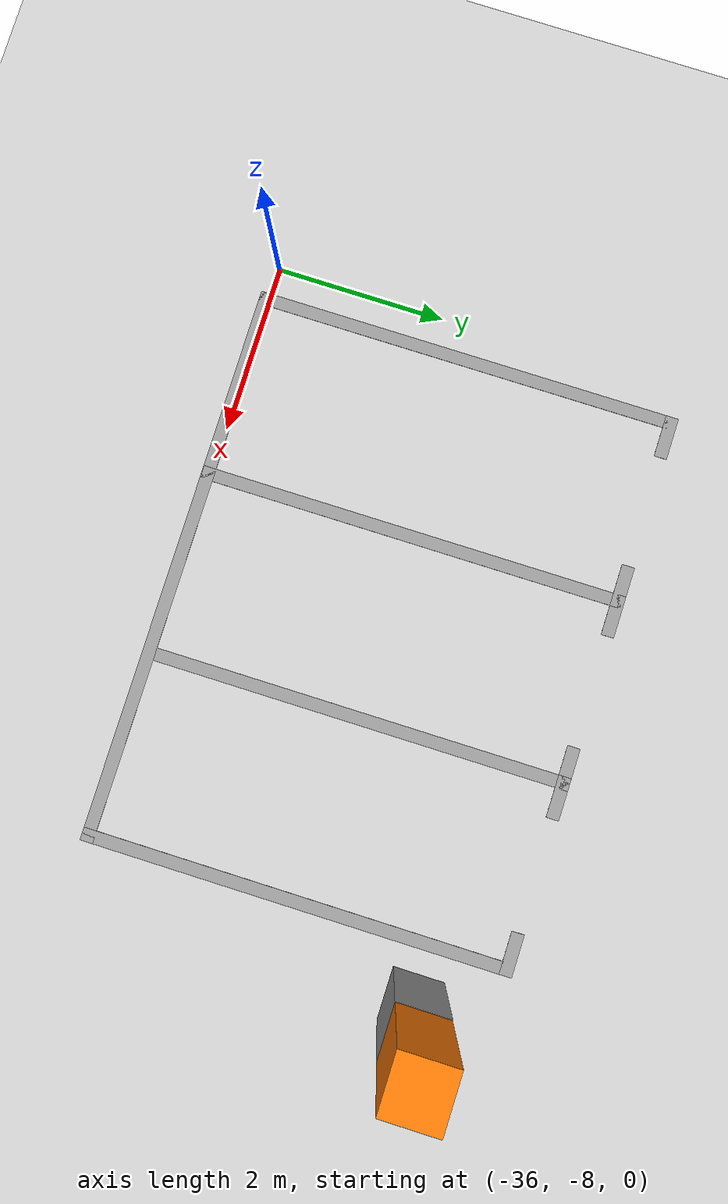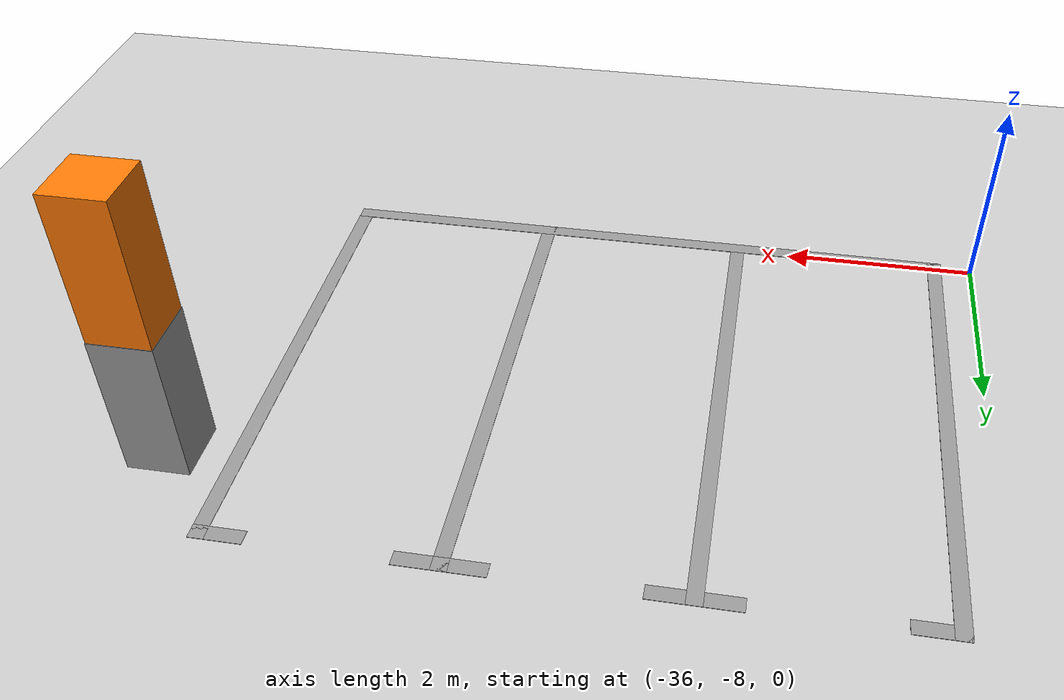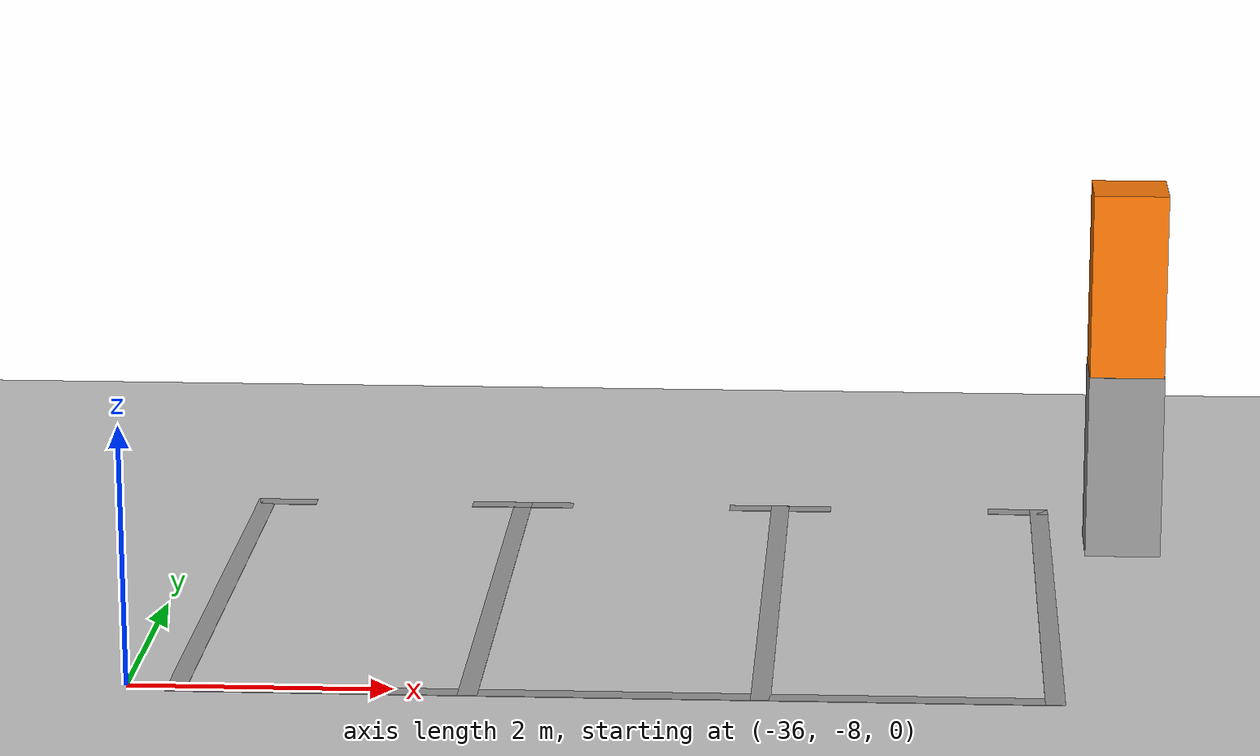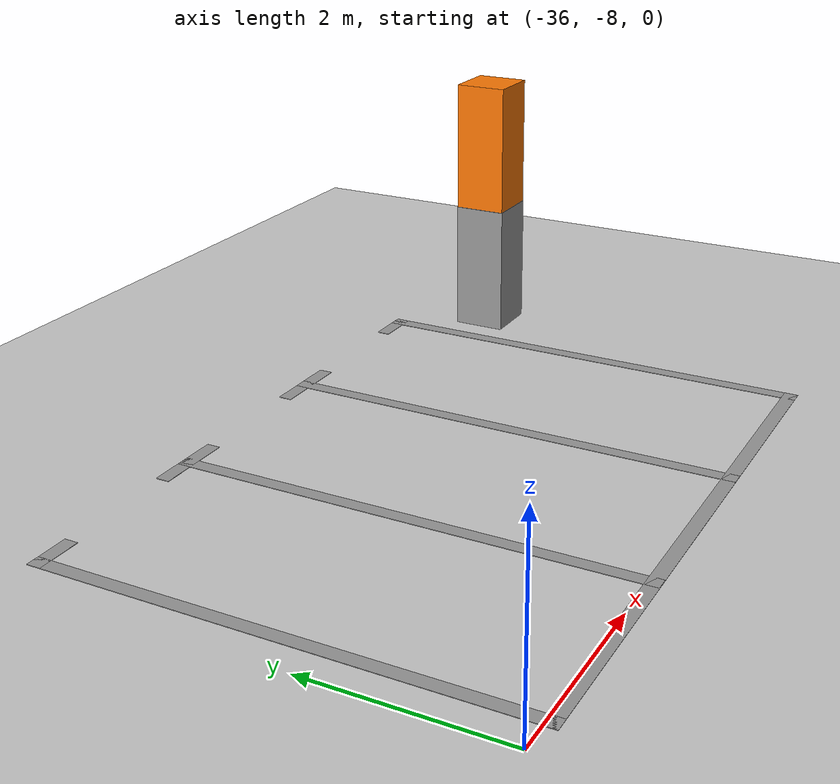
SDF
<sdf version="1.7">
 <world name="default">
  <model name="ground_plane">
   <static>1</static>
   <link name="link">
    <collision name="collision">
     <geometry><plane><normal>0 0 1</normal><size>100 100</size></plane></geometry>
     <surface><friction><ode><mu>100</mu><mu2>50</mu2></ode></friction></surface>
    </collision>
    <visual name="visual">
     <cast_shadows>0</cast_shadows>
     <geometry><plane><normal>0 0 1</normal><size>100 100</size></plane></geometry>
     <material>
      <script><uri>file://media/materials/scripts/gazebo.material</uri><name>Gazebo/Grey</name></script>
     </material>
    </visual>
   </link>
  </model>
  <model name="carport1_4">
   <pose>-31.9117 -7.30915 0 0 -0 3.14141</pose>
   <link name="Wall_105">
    <collision name="Wall_105_Collision">
     <geometry><box><size>0.61 0.6 1.5</size></box></geometry>
     <pose>0 0 0.75 0 -0 0</pose>
    </collision>
    <visual name="Wall_105_Visual">
     <pose>0 0 0.75 0 -0 0</pose>
     <geometry><box><size>0.61 0.6 1.5</size></box></geometry>
     <material>
      <script><uri>file://media/materials/scripts/gazebo.material</uri><name>Gazebo/Grey</name></script>
      <ambient>1 1 1 1</ambient>
     </material>
     <meta><layer>0</layer></meta>
    </visual>
    <pose>-3.47407 -3.2865 0 0 -0 0</pose>
   </link>
   <link name="Wall_116">
    <collision name="Wall_116_Collision">
     <geometry><box><size>5.1 0.15 0.005</size></box></geometry>
     <pose>0 0 0.0025 0 -0 0</pose>
    </collision>
    <visual name="Wall_116_Visual">
     <pose>0 0 0.0025 0 -0 0</pose>
     <geometry><box><size>5.1 0.15 0.005</size></box></geometry>
     <material>
      <script><uri>file://media/materials/scripts/gazebo.material</uri><name>Gazebo/Grey</name></script>
      <ambient>1 1 1 1</ambient>
     </material>
     <meta><layer>0</layer></meta>
    </visual>
    <pose>-2.82307 -1.7385 0 0 -0 1.5708</pose>
   </link>
   <link name="Wall_124">
    <collision name="Wall_124_Collision">
     <geometry><box><size>5.1 0.15 0.005</size></box></geometry>
     <pose>0 0 0.0025 0 -0 0</pose>
    </collision>
    <visual name="Wall_124_Visual">
     <pose>0 0 0.0025 0 -0 0</pose>
     <geometry><box><size>5.1 0.15 0.005</size></box></geometry>
     <material>
      <script><uri>file://media/materials/scripts/gazebo.material</uri><name>Gazebo/Grey</name></script>
      <ambient>1 1 1 1</ambient>
     </material>
     <meta><layer>0</layer></meta>
    </visual>
    <pose>3.70393 -1.7305 0 0 -0 1.5708</pose>
   </link>
   <link name="Wall_146">
    <collision name="Wall_146_Collision">
     <geometry><box><size>6.67711 0.15 0.005</size></box></geometry>
     <pose>0 0 0.0025 0 -0 0</pose>
    </collision>
    <visual name="Wall_146_Visual">
     <pose>0 0 0.0025 0 -0 0</pose>
     <geometry><box><size>6.67711 0.15 0.005</size></box></geometry>
     <material>
      <script><uri>file://media/materials/scripts/gazebo.material</uri><name>Gazebo/Grey</name></script>
      <ambient>1 1 1 1</ambient>
     </material>
     <meta><layer>0</layer></meta>
    </visual>
    <pose>0.440428 0.7405 0 0 -0 0.001226</pose>
   </link>
   <link name="Wall_168">
    <collision name="Wall_168_Collision">
     <geometry><box><size>5.1 0.15 0.005</size></box></geometry>
     <pose>0 0 0.0025 0 -0 0</pose>
    </collision>
    <visual name="Wall_168_Visual">
     <pose>0 0 0.0025 0 -0 0</pose>
     <geometry><box><size>5.1 0.15 0.005</size></box></geometry>
     <material>
      <script><uri>file://media/materials/scripts/gazebo.material</uri><name>Gazebo/Grey</name></script>
      <ambient>1 1 1 1</ambient>
     </material>
     <meta><layer>0</layer></meta>
    </visual>
    <pose>-0.64827 -1.73839 0 0 -0 1.57088</pose>
   </link>
   <link name="Wall_173">
    <collision name="Wall_173_Collision">
     <geometry><box><size>5.1 0.15 0.005</size></box></geometry>
     <pose>0 0 0.0025 0 -0 0</pose>
    </collision>
    <visual name="Wall_173_Visual">
     <pose>0 0 0.0025 0 -0 0</pose>
     <geometry><box><size>5.1 0.15 0.005</size></box></geometry>
     <material>
      <script><uri>file://media/materials/scripts/gazebo.material</uri><name>Gazebo/Grey</name></script>
      <ambient>1 1 1 1</ambient>
     </material>
     <meta><layer>0</layer></meta>
    </visual>
    <pose>1.52673 -1.73839 0 0 -0 1.57088</pose>
   </link>
   <link name="Wall_177">
    <collision name="Wall_177_Collision">
     <geometry><box><size>0.6 0.59 3</size></box></geometry>
     <pose>0 0 1.5 0 -0 0</pose>
    </collision>
    <visual name="Wall_177_Visual">
     <pose>0 0 1.5 0 -0 0</pose>
     <geometry><box><size>0.6 0.59 3</size></box></geometry>
     <material>
      <script><uri>file://media/materials/scripts/gazebo.material</uri><name>Gazebo/Grey</name></script>
      <ambient>0.996078 0.47451 0.0196078 1</ambient>
     </material>
     <meta><layer>0</layer></meta>
    </visual>
    <pose>-3.47407 -3.2865 0 0 -0 0</pose>
   </link>
   <link name="Wall_179">
    <collision name="Wall_179_Collision">
     <geometry><box><size>0.5 0.15 0.005</size></box></geometry>
     <pose>0 0 0.0025 0 -0 0</pose>
    </collision>
    <visual name="Wall_179_Visual">
     <pose>0 0 0.0025 0 -0 0</pose>
     <geometry><box><size>0.5 0.15 0.005</size></box></geometry>
     <material>
      <script><uri>file://media/materials/scripts/gazebo.material</uri><name>Gazebo/Grey</name></script>
      <ambient>1 1 1 1</ambient>
     </material>
     <meta><layer>0</layer></meta>
    </visual>
    <pose>-2.64807 -4.2135 0 0 -0 0</pose>
   </link>
   <link name="Wall_181">
    <collision name="Wall_181_Collision">
     <geometry><box><size>0.5 0.15 0.005</size></box></geometry>
     <pose>0 0 0.0025 0 -0 0</pose>
    </collision>
    <visual name="Wall_181_Visual">
     <pose>0 0 0.0025 0 -0 0</pose>
     <geometry><box><size>0.5 0.15 0.005</size></box></geometry>
     <material>
      <script><uri>file://media/materials/scripts/gazebo.material</uri><name>Gazebo/Grey</name></script>
      <ambient>1 1 1 1</ambient>
     </material>
     <meta><layer>0</layer></meta>
    </visual>
    <pose>-0.823072 -4.2135 0 0 -0 3.14159</pose>
   </link>
   <link name="Wall_183">
    <collision name="Wall_183_Collision">
     <geometry><box><size>0.5 0.15 0.005</size></box></geometry>
     <pose>0 0 0.0025 0 -0 0</pose>
    </collision>
    <visual name="Wall_183_Visual">
     <pose>0 0 0.0025 0 -0 0</pose>
     <geometry><box><size>0.5 0.15 0.005</size></box></geometry>
     <material>
      <script><uri>file://media/materials/scripts/gazebo.material</uri><name>Gazebo/Grey</name></script>
      <ambient>1 1 1 1</ambient>
     </material>
     <meta><layer>0</layer></meta>
    </visual>
    <pose>-0.473072 -4.2135 0 0 -0 0</pose>
   </link>
   <link name="Wall_185">
    <collision name="Wall_185_Collision">
     <geometry><box><size>0.5 0.15 0.005</size></box></geometry>
     <pose>0 0 0.0025 0 -0 0</pose>
    </collision>
    <visual name="Wall_185_Visual">
     <pose>0 0 0.0025 0 -0 0</pose>
     <geometry><box><size>0.5 0.15 0.005</size></box></geometry>
     <material>
      <script><uri>file://media/materials/scripts/gazebo.material</uri><name>Gazebo/Grey</name></script>
      <ambient>1 1 1 1</ambient>
     </material>
     <meta><layer>0</layer></meta>
    </visual>
    <pose>1.35193 -4.2135 0 0 -0 3.14159</pose>
   </link>
   <link name="Wall_187">
    <collision name="Wall_187_Collision">
     <geometry><box><size>0.5 0.15 0.005</size></box></geometry>
     <pose>0 0 0.0025 0 -0 0</pose>
    </collision>
    <visual name="Wall_187_Visual">
     <pose>0 0 0.0025 0 -0 0</pose>
     <geometry><box><size>0.5 0.15 0.005</size></box></geometry>
     <material>
      <script><uri>file://media/materials/scripts/gazebo.material</uri><name>Gazebo/Grey</name></script>
      <ambient>1 1 1 1</ambient>
     </material>
     <meta><layer>0</layer></meta>
    </visual>
    <pose>1.70193 -4.2135 0 0 -0 0</pose>
   </link>
   <link name="Wall_189">
    <collision name="Wall_189_Collision">
     <geometry><box><size>0.5 0.15 0.005</size></box></geometry>
     <pose>0 0 0.0025 0 -0 0</pose>
    </collision>
    <visual name="Wall_189_Visual">
     <pose>0 0 0.0025 0 -0 0</pose>
     <geometry><box><size>0.5 0.15 0.005</size></box></geometry>
     <material>
      <script><uri>file://media/materials/scripts/gazebo.material</uri><name>Gazebo/Grey</name></script>
      <ambient>1 1 1 1</ambient>
     </material>
     <meta><layer>0</layer></meta>
    </visual>
    <pose>3.52893 -4.2055 0 0 -0 3.14159</pose>
   </link>
   <static>1</static>
  </model>
 </world>
</sdf>
